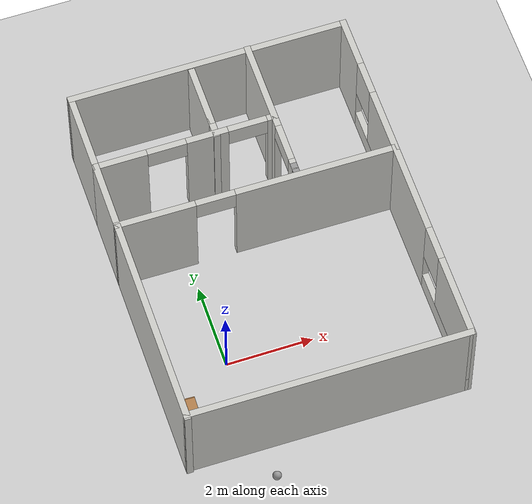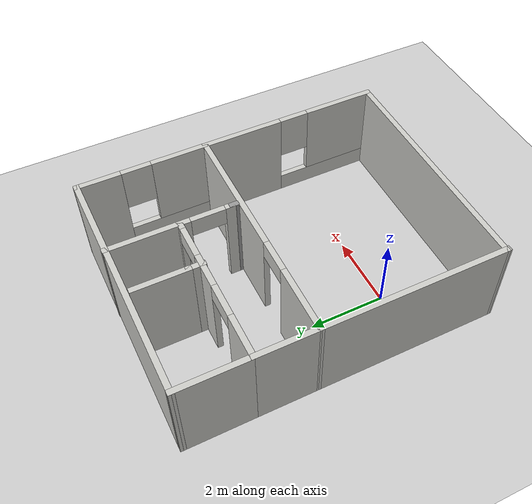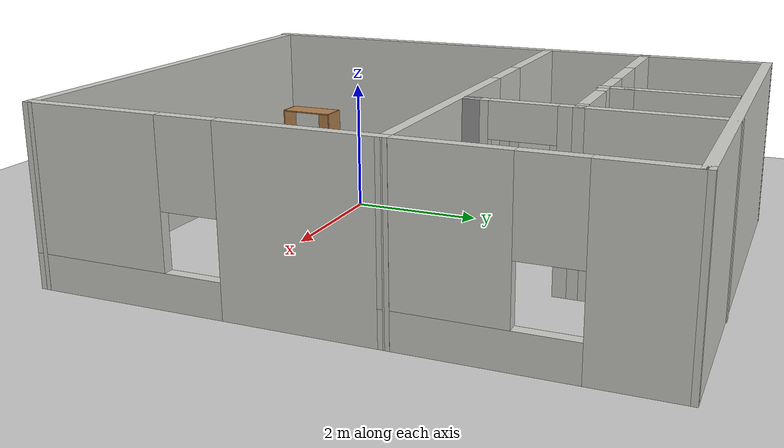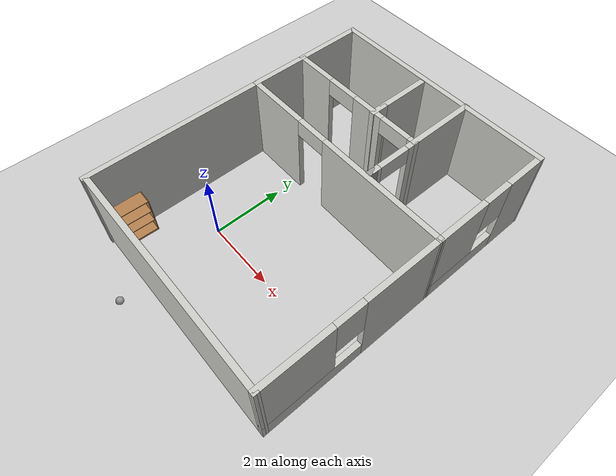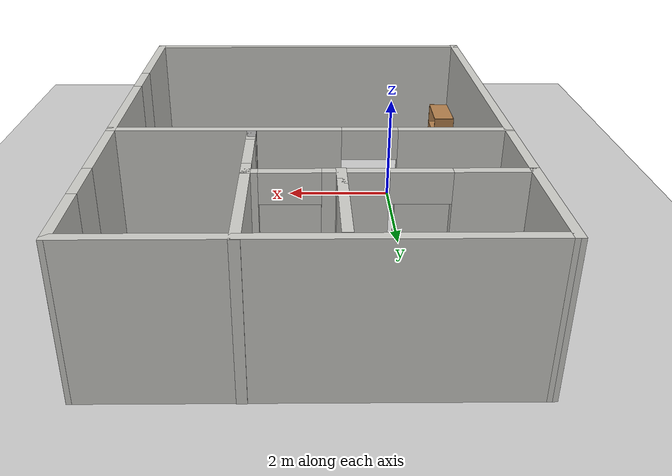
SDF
<sdf version="1.7">
 <world name="default">
  <plugin name="hello" filename="libstudent.so"/>
  <light name="sun" type="directional">
   <pose>0 0 10 0 -0 0</pose>
   <diffuse>0.8 0.8 0.8 1</diffuse>
   <specular>0.2 0.2 0.2 1</specular>
   <attenuation>
    <range>1000</range>
    <constant>0.9</constant>
    <linear>0.01</linear>
    <quadratic>0.001</quadratic>
   </attenuation>
   <direction>-0.5 0.1 -0.9</direction>
   <spot><inner_angle>0</inner_angle><outer_angle>0</outer_angle><falloff>0</falloff></spot>
  </light>
  <model name="ground_plane">
   <static>1</static>
   <link name="link">
    <collision name="collision">
     <geometry><plane><normal>0 0 1</normal><size>100 100</size></plane></geometry>
     <surface>
      <contact><collide_bitmask>65535</collide_bitmask></contact>
      <friction><ode><mu>100</mu><mu2>50</mu2></ode></friction>
     </surface>
    </collision>
    <visual name="visual">
     <cast_shadows>0</cast_shadows>
     <geometry><plane><normal>0 0 1</normal><size>100 100</size></plane></geometry>
     <material>
      <script><uri>file://media/materials/scripts/gazebo.material</uri><name>Gazebo/Grey</name></script>
     </material>
    </visual>
   </link>
  </model>
  <gravity>0 0 -9.8</gravity>
  <magnetic_field>6e-06 2.3e-05 -4.2e-05</magnetic_field>
  <atmosphere type="adiabatic"/>
  <physics name="default_physics" default="0" type="ode">
   <max_step_size>0.001</max_step_size>
   <real_time_factor>1</real_time_factor>
   <real_time_update_rate>1000</real_time_update_rate>
  </physics>
  <scene><ambient>0.4 0.4 0.4 1</ambient><background>0.7 0.7 0.7 1</background><shadows>1</shadows></scene>
  <spherical_coordinates>
   <surface_model>EARTH_WGS84</surface_model>
   <latitude_deg>0</latitude_deg>
   <longitude_deg>0</longitude_deg>
   <elevation>0</elevation>
   <heading_deg>0</heading_deg>
  </spherical_coordinates>
  <model name="model">
   <pose>1.60934 1.96601 0 0 -0 0</pose>
   <link name="Wall_0">
    <collision name="Wall_0_Collision">
     <geometry><box><size>5 0.15 2.5</size></box></geometry>
     <pose>0 0 1.25 0 -0 0</pose>
    </collision>
    <visual name="Wall_0_Visual">
     <pose>0 0 1.25 0 -0 0</pose>
     <geometry><box><size>5 0.15 2.5</size></box></geometry>
     <material>
      <script><uri>file://media/materials/scripts/gazebo.material</uri><name>Gazebo/CeilingTiled</name></script>
      <ambient>1 1 1 1</ambient>
     </material>
     <meta><layer>0</layer></meta>
    </visual>
    <pose>-3.17264 -1.72476 0 0 -0 1.5708</pose>
   </link>
   <link name="Wall_1">
    <pose>0.002358 0.720466 0 0 0 -0.006371</pose>
    <visual name="Wall_1_Visual_0">
     <pose>-2.32723 0 1.25 0 -0 0</pose>
     <geometry><box><size>1.84555 0.15 2.5</size></box></geometry>
     <material>
      <script><uri>file://media/materials/scripts/gazebo.material</uri><name>Gazebo/CeilingTiled</name></script>
      <ambient>1 1 1 1</ambient>
     </material>
     <meta><layer>0</layer></meta>
    </visual>
    <collision name="Wall_1_Collision_0">
     <geometry><box><size>1.84555 0.15 2.5</size></box></geometry>
     <pose>-2.32723 0 1.25 0 -0 0</pose>
    </collision>
    <visual name="Wall_1_Visual_1">
     <pose>1.37277 0 1.25 0 -0 0</pose>
     <geometry><box><size>3.75445 0.15 2.5</size></box></geometry>
     <material>
      <script><uri>file://media/materials/scripts/gazebo.material</uri><name>Gazebo/CeilingTiled</name></script>
      <ambient>1 1 1 1</ambient>
     </material>
     <meta><layer>0</layer></meta>
    </visual>
    <collision name="Wall_1_Collision_1">
     <geometry><box><size>3.75445 0.15 2.5</size></box></geometry>
     <pose>1.37277 0 1.25 0 -0 0</pose>
    </collision>
    <visual name="Wall_1_Visual_2">
     <pose>-0.954453 0 2.25 0 -0 0</pose>
     <geometry><box><size>0.9 0.15 0.5</size></box></geometry>
     <material>
      <script><uri>file://media/materials/scripts/gazebo.material</uri><name>Gazebo/CeilingTiled</name></script>
      <ambient>1 1 1 1</ambient>
     </material>
     <meta><layer>0</layer></meta>
    </visual>
    <collision name="Wall_1_Collision_2">
     <geometry><box><size>0.9 0.15 0.5</size></box></geometry>
     <pose>-0.954453 0 2.25 0 -0 0</pose>
    </collision>
   </link>
   <link name="Wall_10">
    <collision name="Wall_10_Collision">
     <geometry><box><size>1.98685 0.15 2.5</size></box></geometry>
     <pose>0 0 1.25 0 -0 0</pose>
    </collision>
    <visual name="Wall_10_Visual">
     <pose>0 0 1.25 0 -0 0</pose>
     <geometry><box><size>1.98685 0.15 2.5</size></box></geometry>
     <material>
      <script><uri>file://media/materials/scripts/gazebo.material</uri><name>Gazebo/CeilingTiled</name></script>
      <ambient>1 1 1 1</ambient>
     </material>
     <meta><layer>0</layer></meta>
    </visual>
    <pose>-3.17511 3.21866 0 0 0 -1.56811</pose>
   </link>
   <link name="Wall_12">
    <collision name="Wall_12_Collision">
     <geometry><box><size>6.5 0.15 2.5</size></box></geometry>
     <pose>0 0 1.25 0 -0 0</pose>
    </collision>
    <visual name="Wall_12_Visual">
     <pose>0 0 1.25 0 -0 0</pose>
     <geometry><box><size>6.5 0.15 2.5</size></box></geometry>
     <material>
      <script><uri>file://media/materials/scripts/gazebo.material</uri><name>Gazebo/CeilingTiled</name></script>
      <ambient>1 1 1 1</ambient>
     </material>
     <meta><layer>0</layer></meta>
    </visual>
    <pose>-0.00257 4.13708 0 0 -0 0</pose>
   </link>
   <link name="Wall_13">
    <pose>3.17489 2.41866 0 0 0 -1.56936</pose>
    <visual name="Wall_13_Visual_0">
     <pose>-1.18724 0 1.25 0 -0 0</pose>
     <geometry><box><size>1.21237 0.15 2.5</size></box></geometry>
     <material>
      <script><uri>file://media/materials/scripts/gazebo.material</uri><name>Gazebo/CeilingTiled</name></script>
      <ambient>1 1 1 1</ambient>
     </material>
     <meta><layer>0</layer></meta>
    </visual>
    <collision name="Wall_13_Collision_0">
     <geometry><box><size>1.21237 0.15 2.5</size></box></geometry>
     <pose>-1.18724 0 1.25 0 -0 0</pose>
    </collision>
    <visual name="Wall_13_Visual_1">
     <pose>0.606185 0 0.25 0 -0 0</pose>
     <geometry><box><size>2.37447 0.15 0.5</size></box></geometry>
     <material>
      <script><uri>file://media/materials/scripts/gazebo.material</uri><name>Gazebo/CeilingTiled</name></script>
      <ambient>1 1 1 1</ambient>
     </material>
     <meta><layer>0</layer></meta>
    </visual>
    <collision name="Wall_13_Collision_1">
     <geometry><box><size>2.37447 0.15 0.5</size></box></geometry>
     <pose>0.606185 0 0.25 0 -0 0</pose>
    </collision>
    <visual name="Wall_13_Visual_2">
     <pose>1.00619 0 1.5 0 -0 0</pose>
     <geometry><box><size>1.57448 0.15 2</size></box></geometry>
     <material>
      <script><uri>file://media/materials/scripts/gazebo.material</uri><name>Gazebo/CeilingTiled</name></script>
      <ambient>1 1 1 1</ambient>
     </material>
     <meta><layer>0</layer></meta>
    </visual>
    <collision name="Wall_13_Collision_2">
     <geometry><box><size>1.57448 0.15 2</size></box></geometry>
     <pose>1.00619 0 1.5 0 -0 0</pose>
    </collision>
    <visual name="Wall_13_Visual_3">
     <pose>-0.181052 0 1.9 0 -0 0</pose>
     <geometry><box><size>0.8 0.15 1.2</size></box></geometry>
     <material>
      <script><uri>file://media/materials/scripts/gazebo.material</uri><name>Gazebo/CeilingTiled</name></script>
      <ambient>1 1 1 1</ambient>
     </material>
     <meta><layer>0</layer></meta>
    </visual>
    <collision name="Wall_13_Collision_3">
     <geometry><box><size>0.8 0.15 1.2</size></box></geometry>
     <pose>-0.181052 0 1.9 0 -0 0</pose>
    </collision>
   </link>
   <link name="Wall_15">
    <collision name="Wall_15_Collision">
     <geometry><box><size>1.5 0.15 2.5</size></box></geometry>
     <pose>0 0 1.25 0 -0 0</pose>
    </collision>
    <visual name="Wall_15_Visual">
     <pose>0 0 1.25 0 -0 0</pose>
     <geometry><box><size>1.5 0.15 2.5</size></box></geometry>
     <material>
      <script><uri>file://media/materials/scripts/gazebo.material</uri><name>Gazebo/CeilingTiled</name></script>
      <ambient>1 1 1 1</ambient>
     </material>
     <meta><layer>0</layer></meta>
    </visual>
    <pose>-0.42659 3.30026 0 0 0 -1.5708</pose>
   </link>
   <link name="Wall_16">
    <collision name="Wall_16_Collision">
     <geometry><box><size>0.5 0.15 2.5</size></box></geometry>
     <pose>0 0 1.25 0 -0 0</pose>
    </collision>
    <visual name="Wall_16_Visual">
     <pose>0 0 1.25 0 -0 0</pose>
     <geometry><box><size>0.5 0.15 2.5</size></box></geometry>
     <material>
      <script><uri>file://media/materials/scripts/gazebo.material</uri><name>Gazebo/CeilingTiled</name></script>
      <ambient>1 1 1 1</ambient>
     </material>
     <meta><layer>0</layer></meta>
    </visual>
    <pose>-0.42659 2.45026 0 0 0 -1.5708</pose>
   </link>
   <link name="Wall_2">
    <pose>3.17736 -1.72476 0 0 0 -1.5708</pose>
    <visual name="Wall_2_Visual_0">
     <pose>-1.38721 0 1.25 0 -0 0</pose>
     <geometry><box><size>2.22558 0.15 2.5</size></box></geometry>
     <material>
      <script><uri>file://media/materials/scripts/gazebo.material</uri><name>Gazebo/CeilingTiled</name></script>
      <ambient>1 1 1 1</ambient>
     </material>
     <meta><layer>0</layer></meta>
    </visual>
    <collision name="Wall_2_Collision_0">
     <geometry><box><size>2.22558 0.15 2.5</size></box></geometry>
     <pose>-1.38721 0 1.25 0 -0 0</pose>
    </collision>
    <visual name="Wall_2_Visual_1">
     <pose>1.11279 0 0.25 0 -0 0</pose>
     <geometry><box><size>2.77442 0.15 0.5</size></box></geometry>
     <material>
      <script><uri>file://media/materials/scripts/gazebo.material</uri><name>Gazebo/CeilingTiled</name></script>
      <ambient>1 1 1 1</ambient>
     </material>
     <meta><layer>0</layer></meta>
    </visual>
    <collision name="Wall_2_Collision_1">
     <geometry><box><size>2.77442 0.15 0.5</size></box></geometry>
     <pose>1.11279 0 0.25 0 -0 0</pose>
    </collision>
    <visual name="Wall_2_Visual_2">
     <pose>1.51279 0 1.5 0 -0 0</pose>
     <geometry><box><size>1.97442 0.15 2</size></box></geometry>
     <material>
      <script><uri>file://media/materials/scripts/gazebo.material</uri><name>Gazebo/CeilingTiled</name></script>
      <ambient>1 1 1 1</ambient>
     </material>
     <meta><layer>0</layer></meta>
    </visual>
    <collision name="Wall_2_Collision_2">
     <geometry><box><size>1.97442 0.15 2</size></box></geometry>
     <pose>1.51279 0 1.5 0 -0 0</pose>
    </collision>
    <visual name="Wall_2_Visual_3">
     <pose>0.125583 0 1.9 0 -0 0</pose>
     <geometry><box><size>0.8 0.15 1.2</size></box></geometry>
     <material>
      <script><uri>file://media/materials/scripts/gazebo.material</uri><name>Gazebo/CeilingTiled</name></script>
      <ambient>1 1 1 1</ambient>
     </material>
     <meta><layer>0</layer></meta>
    </visual>
    <collision name="Wall_2_Collision_3">
     <geometry><box><size>0.8 0.15 1.2</size></box></geometry>
     <pose>0.125583 0 1.9 0 -0 0</pose>
    </collision>
   </link>
   <link name="Wall_20">
    <collision name="Wall_20_Collision">
     <geometry><box><size>2 0.15 2.5</size></box></geometry>
     <pose>0 0 1.25 0 -0 0</pose>
    </collision>
    <visual name="Wall_20_Visual">
     <pose>0 0 1.25 0 -0 0</pose>
     <geometry><box><size>2 0.15 2.5</size></box></geometry>
     <material>
      <script><uri>file://media/materials/scripts/gazebo.material</uri><name>Gazebo/CeilingTiled</name></script>
      <ambient>1 1 1 1</ambient>
     </material>
     <meta><layer>0</layer></meta>
    </visual>
    <pose>0.927358 3.22524 0 0 -0 1.5708</pose>
   </link>
   <link name="Wall_3">
    <collision name="Wall_3_Collision">
     <geometry><box><size>6.5 0.15 2.5</size></box></geometry>
     <pose>0 0 1.25 0 -0 0</pose>
    </collision>
    <visual name="Wall_3_Visual">
     <pose>0 0 1.25 0 -0 0</pose>
     <geometry><box><size>6.5 0.15 2.5</size></box></geometry>
     <material>
      <script><uri>file://media/materials/scripts/gazebo.material</uri><name>Gazebo/CeilingTiled</name></script>
      <ambient>0.760784 0.662745 0.627451 1</ambient>
     </material>
     <meta><layer>0</layer></meta>
    </visual>
    <pose>0.002358 -4.12953 0 0 -0 3.13522</pose>
   </link>
   <link name="Wall_5">
    <collision name="Wall_5_Collision">
     <geometry><box><size>1.70954 0.15 2.5</size></box></geometry>
     <pose>0 0 1.25 0 -0 0</pose>
    </collision>
    <visual name="Wall_5_Visual">
     <pose>0 0 1.25 0 -0 0</pose>
     <geometry><box><size>1.70954 0.15 2.5</size></box></geometry>
     <material>
      <script><uri>file://media/materials/scripts/gazebo.material</uri><name>Gazebo/CeilingTiled</name></script>
      <ambient>1 1 1 1</ambient>
     </material>
     <meta><layer>0</layer></meta>
    </visual>
    <pose>-3.17264 1.52047 0 0 -0 1.5708</pose>
   </link>
   <link name="Wall_6">
    <pose>-1.12264 2.30024 0 0 -0 0</pose>
    <visual name="Wall_6_Visual_0">
     <pose>-1.50585 0 1.25 0 -0 0</pose>
     <geometry><box><size>1.23829 0.15 2.5</size></box></geometry>
     <material>
      <script><uri>file://media/materials/scripts/gazebo.material</uri><name>Gazebo/CeilingTiled</name></script>
      <ambient>1 1 1 1</ambient>
     </material>
     <meta><layer>0</layer></meta>
    </visual>
    <collision name="Wall_6_Collision_0">
     <geometry><box><size>1.23829 0.15 2.5</size></box></geometry>
     <pose>-1.50585 0 1.25 0 -0 0</pose>
    </collision>
    <visual name="Wall_6_Visual_1">
     <pose>0.493773 0 1.25 0 -0 0</pose>
     <geometry><box><size>0.960957 0.15 2.5</size></box></geometry>
     <material>
      <script><uri>file://media/materials/scripts/gazebo.material</uri><name>Gazebo/CeilingTiled</name></script>
      <ambient>1 1 1 1</ambient>
     </material>
     <meta><layer>0</layer></meta>
    </visual>
    <collision name="Wall_6_Collision_1">
     <geometry><box><size>0.960957 0.15 2.5</size></box></geometry>
     <pose>0.493773 0 1.25 0 -0 0</pose>
    </collision>
    <visual name="Wall_6_Visual_2">
     <pose>1.99963 0 1.25 0 -0 0</pose>
     <geometry><box><size>0.250748 0.15 2.5</size></box></geometry>
     <material>
      <script><uri>file://media/materials/scripts/gazebo.material</uri><name>Gazebo/CeilingTiled</name></script>
      <ambient>1 1 1 1</ambient>
     </material>
     <meta><layer>0</layer></meta>
    </visual>
    <collision name="Wall_6_Collision_2">
     <geometry><box><size>0.250748 0.15 2.5</size></box></geometry>
     <pose>1.99963 0 1.25 0 -0 0</pose>
    </collision>
    <visual name="Wall_6_Visual_3">
     <pose>-0.436705 0 2.25 0 -0 0</pose>
     <geometry><box><size>0.9 0.15 0.5</size></box></geometry>
     <material>
      <script><uri>file://media/materials/scripts/gazebo.material</uri><name>Gazebo/CeilingTiled</name></script>
      <ambient>1 1 1 1</ambient>
     </material>
     <meta><layer>0</layer></meta>
    </visual>
    <collision name="Wall_6_Collision_3">
     <geometry><box><size>0.9 0.15 0.5</size></box></geometry>
     <pose>-0.436705 0 2.25 0 -0 0</pose>
    </collision>
    <visual name="Wall_6_Visual_4">
     <pose>1.42425 0 2.25 0 -0 0</pose>
     <geometry><box><size>0.9 0.15 0.5</size></box></geometry>
     <material>
      <script><uri>file://media/materials/scripts/gazebo.material</uri><name>Gazebo/CeilingTiled</name></script>
      <ambient>1 1 1 1</ambient>
     </material>
     <meta><layer>0</layer></meta>
    </visual>
    <collision name="Wall_6_Collision_4">
     <geometry><box><size>0.9 0.15 0.5</size></box></geometry>
     <pose>1.42425 0 2.25 0 -0 0</pose>
    </collision>
   </link>
   <link name="Wall_7">
    <pose>0.927358 1.62524 0 0 0 -1.5708</pose>
    <visual name="Wall_7_Visual_0">
     <pose>-0.58157 0 1.25 0 -0 0</pose>
     <geometry><box><size>0.336859 0.15 2.5</size></box></geometry>
     <material>
      <script><uri>file://media/materials/scripts/gazebo.material</uri><name>Gazebo/CeilingTiled</name></script>
      <ambient>1 1 1 1</ambient>
     </material>
     <meta><layer>0</layer></meta>
    </visual>
    <collision name="Wall_7_Collision_0">
     <geometry><box><size>0.336859 0.15 2.5</size></box></geometry>
     <pose>-0.58157 0 1.25 0 -0 0</pose>
    </collision>
    <visual name="Wall_7_Visual_1">
     <pose>0.61843 0 1.25 0 -0 0</pose>
     <geometry><box><size>0.263141 0.15 2.5</size></box></geometry>
     <material>
      <script><uri>file://media/materials/scripts/gazebo.material</uri><name>Gazebo/CeilingTiled</name></script>
      <ambient>1 1 1 1</ambient>
     </material>
     <meta><layer>0</layer></meta>
    </visual>
    <collision name="Wall_7_Collision_1">
     <geometry><box><size>0.263141 0.15 2.5</size></box></geometry>
     <pose>0.61843 0 1.25 0 -0 0</pose>
    </collision>
    <visual name="Wall_7_Visual_2">
     <pose>0.036859 0 2.25 0 -0 0</pose>
     <geometry><box><size>0.9 0.15 0.5</size></box></geometry>
     <material>
      <script><uri>file://media/materials/scripts/gazebo.material</uri><name>Gazebo/CeilingTiled</name></script>
      <ambient>1 1 1 1</ambient>
     </material>
     <meta><layer>0</layer></meta>
    </visual>
    <collision name="Wall_7_Collision_2">
     <geometry><box><size>0.9 0.15 0.5</size></box></geometry>
     <pose>0.036859 0 2.25 0 -0 0</pose>
    </collision>
   </link>
   <link name="Wall_8">
    <collision name="Wall_8_Collision">
     <geometry><box><size>0.25 0.15 2.5</size></box></geometry>
     <pose>0 0 1.25 0 -0 0</pose>
    </collision>
    <visual name="Wall_8_Visual">
     <pose>0 0 1.25 0 -0 0</pose>
     <geometry><box><size>0.25 0.15 2.5</size></box></geometry>
     <material>
      <script><uri>file://media/materials/scripts/gazebo.material</uri><name>Gazebo/Grey</name></script>
      <ambient>1 1 1 1</ambient>
     </material>
     <meta><layer>0</layer></meta>
    </visual>
    <pose>0.927358 0.900238 0 0 0 -1.5708</pose>
   </link>
   <static>1</static>
  </model>
  <model name="bookshelf">
   <static>1</static>
   <link name="link">
    <inertial><mass>1</mass></inertial>
    <collision name="back">
     <pose>0 0.005 0.6 0 -0 0</pose>
     <geometry><box><size>0.9 0.01 1.2</size></box></geometry>
    </collision>
    <visual name="visual1">
     <pose>0 0.005 0.6 0 -0 0</pose>
     <geometry><box><size>0.9 0.01 1.2</size></box></geometry>
     <material>
      <script><uri>file://media/materials/scripts/gazebo.material</uri><name>Gazebo/Wood</name></script>
     </material>
    </visual>
    <collision name="left_side">
     <pose>0.45 -0.195 0.6 0 -0 0</pose>
     <geometry><box><size>0.02 0.4 1.2</size></box></geometry>
    </collision>
    <visual name="visual2">
     <pose>0.45 -0.195 0.6 0 -0 0</pose>
     <geometry><box><size>0.02 0.4 1.2</size></box></geometry>
     <material>
      <script><uri>file://media/materials/scripts/gazebo.material</uri><name>Gazebo/Wood</name></script>
     </material>
    </visual>
    <collision name="right_side">
     <pose>-0.45 -0.195 0.6 0 -0 0</pose>
     <geometry><box><size>0.02 0.4 1.2</size></box></geometry>
    </collision>
    <visual name="visual3">
     <pose>-0.45 -0.195 0.6 0 -0 0</pose>
     <geometry><box><size>0.02 0.4 1.2</size></box></geometry>
     <material>
      <script><uri>file://media/materials/scripts/gazebo.material</uri><name>Gazebo/Wood</name></script>
     </material>
    </visual>
    <collision name="bottom">
     <pose>0 -0.195 0.03 0 -0 0</pose>
     <geometry><box><size>0.88 0.4 0.06</size></box></geometry>
    </collision>
    <visual name="visual4">
     <pose>0 -0.195 0.03 0 -0 0</pose>
     <geometry><box><size>0.88 0.4 0.06</size></box></geometry>
     <material>
      <script><uri>file://media/materials/scripts/gazebo.material</uri><name>Gazebo/Wood</name></script>
     </material>
    </visual>
    <collision name="top">
     <pose>0 -0.195 1.19 0 -0 0</pose>
     <geometry><box><size>0.88 0.4 0.02</size></box></geometry>
    </collision>
    <visual name="visual5">
     <pose>0 -0.195 1.19 0 -0 0</pose>
     <geometry><box><size>0.88 0.4 0.02</size></box></geometry>
     <material>
      <script><uri>file://media/materials/scripts/gazebo.material</uri><name>Gazebo/Wood</name></script>
     </material>
    </visual>
    <collision name="low_shelf">
     <pose>0 -0.195 0.43 0 -0 0</pose>
     <geometry><box><size>0.88 0.4 0.02</size></box></geometry>
    </collision>
    <visual name="visual6">
     <pose>0 -0.195 0.43 0 -0 0</pose>
     <geometry><box><size>0.88 0.4 0.02</size></box></geometry>
     <material>
      <script><uri>file://media/materials/scripts/gazebo.material</uri><name>Gazebo/Wood</name></script>
     </material>
    </visual>
    <collision name="high_shelf">
     <pose>0 -0.195 0.8 0 -0 0</pose>
     <geometry><box><size>0.88 0.4 0.02</size></box></geometry>
    </collision>
    <visual name="visual7">
     <pose>0 -0.195 0.8 0 -0 0</pose>
     <geometry><box><size>0.88 0.4 0.02</size></box></geometry>
     <material>
      <script><uri>file://media/materials/scripts/gazebo.material</uri><name>Gazebo/Wood</name></script>
     </material>
    </visual>
   </link>
   <pose>-1.48905 -1.57398 0 0 -0 1.54299</pose>
  </model>
  <model name="my_ball">
   <link name="link_0">
    <inertial>
     <mass>1</mass>
     <inertia><ixx>0.1</ixx><ixy>0</ixy><ixz>0</ixz><iyy>0.1</iyy><iyz>0</iyz><izz>0.1</izz></inertia>
    </inertial>
    <visual name="visual">
     <geometry><sphere><radius>0.1</radius></sphere></geometry>
     <material>
      <lighting>1</lighting>
      <script><uri>file://media/materials/scripts/gazebo.material</uri><name>Gazebo/Grey</name></script>
      <shader type="pixel"><normal_map>__default__</normal_map></shader>
      <ambient>1 1 1 1</ambient>
      <diffuse>1 1 1 1</diffuse>
      <specular>1 1 1 1</specular>
      <emissive>1 1 1 1</emissive>
     </material>
    </visual>
    <collision name="collision">
     <geometry><sphere><radius>0.1</radius></sphere></geometry>
     <surface>
      <friction>
       <ode><mu>1</mu><mu2>1</mu2><fdir1>0 0 0</fdir1><slip1>0</slip1><slip2>0</slip2></ode>
       <torsional>
        <coefficient>1</coefficient>
        <patch_radius>0</patch_radius>
        <surface_radius>0</surface_radius>
        <use_patch_radius>1</use_patch_radius>
        <ode><slip>0</slip></ode>
       </torsional>
      </friction>
      <bounce><restitution_coefficient>0</restitution_coefficient><threshold>1e+06</threshold></bounce>
      <contact>
       <collide_without_contact>0</collide_without_contact>
       <collide_without_contact_bitmask>1</collide_without_contact_bitmask>
       <collide_bitmask>1</collide_bitmask>
       <ode>
        <soft_cfm>0</soft_cfm>
        <soft_erp>0.2</soft_erp>
        <kp>1e+13</kp>
        <kd>1</kd>
        <max_vel>0.01</max_vel>
        <min_depth>0</min_depth>
       </ode>
       <bullet>
        <split_impulse>1</split_impulse>
        <split_impulse_penetration_threshold>-0.01</split_impulse_penetration_threshold>
        <soft_cfm>0</soft_cfm>
        <soft_erp>0.2</soft_erp>
        <kp>1e+13</kp>
        <kd>1</kd>
       </bullet>
      </contact>
     </surface>
    </collision>
   </link>
   <static>0</static>
   <pose>0.171137 -2.95741 0.1 0 -0 0</pose>
  </model>
 </world>
</sdf>
